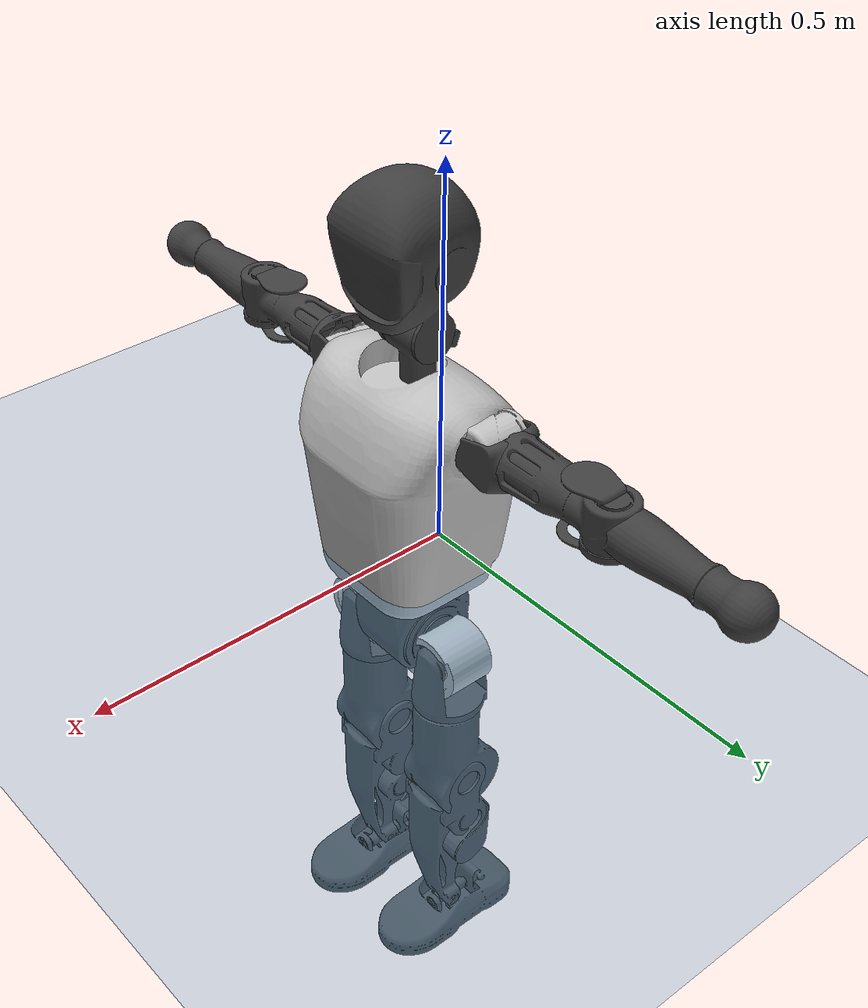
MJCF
<mujoco model="T1">
  <compiler angle="radian" assetdir="assets" balanceinertia="true" inertiafromgeom="false"/>

  <option timestep="0.005" density="1.2" viscosity="2e-05"/>

  <size nkey="1"/>

  <visual>
    <quality shadowsize="8192"/>
    <map shadowclip="0.5"/>
  </visual>

  <default>
    <default class="/">
      <joint armature="0.01" damping="0.01" frictionloss="0.1"/>
      <geom contype="0" conaffinity="0" group="1" solref="-1000 -80"/>
      <site size="0.01 0.005 0.005" group="5"/>
      <general forcelimited="true" biastype="affine" gainprm="25" biasprm="0 -25 -0.6"/>
      <default class="t1">
        <geom rgba="0.25 0.25 0.25 1"/>
        <default class="visual">
          <geom type="mesh" group="2"/>
        </default>
        <default class="collision">
          <geom group="3"/>
        </default>
        <default class="foot">
          <geom size="0.1115 0.05 0.015" type="box" condim="6" group="4" priority="1" solimp="0.015 1 0.015"/>
        </default>
        <default class="reward_collision_sphere">
          <geom group="5" rgba="1 0 0 1"/>
        </default>
      </default>
    </default>
  </default>

  <asset>
    <texture type="skybox" colorspace="auto" name="//unnamed_texture_0" builtin="gradient" rgb1="0.95 0.95 0.95" rgb2="0.95 0.95 0.95" width="100" height="600"/>
    <texture type="2d" colorspace="auto" name="texplane" builtin="checker" rgb1="0.345 0.575 0.748" rgb2="0.345 0.575 0.748" markrgb="1 1 1" width="512" height="512"/>
    <material name="MatPlane" class="/" texture="texplane" texuniform="true" texrepeat="2 2" specular="0.9"/>
    <mesh name="Trunk" class="/" file="Trunk.stl"/>
    <mesh name="H1" class="/" file="H1.stl"/>
    <mesh name="H2" class="/" file="H2.stl"/>
    <mesh name="AL1" class="/" file="AL1.stl"/>
    <mesh name="AL2" class="/" file="AL2.stl"/>
    <mesh name="AL3" class="/" file="AL3.stl"/>
    <mesh name="left_hand_link" class="/" file="left_hand_link.stl"/>
    <mesh name="AR1" class="/" file="AR1.stl"/>
    <mesh name="AR2" class="/" file="AR2.stl"/>
    <mesh name="AR3" class="/" file="AR3.stl"/>
    <mesh name="right_hand_link" class="/" file="right_hand_link.stl"/>
    <mesh name="Waist" class="/" file="Waist.stl"/>
    <mesh name="Hip_Pitch_Left" class="/" file="Hip_Pitch_Left.stl"/>
    <mesh name="Hip_Roll_Left" class="/" file="Hip_Roll_Left.stl"/>
    <mesh name="Hip_Yaw_Left" class="/" file="Hip_Yaw_Left.stl"/>
    <mesh name="Shank_Left" class="/" file="Shank_Left.stl"/>
    <mesh name="Ankle_Cross_Left" class="/" file="Ankle_Cross_Left.stl"/>
    <mesh name="left_foot_link" class="/" file="left_foot_link.stl"/>
    <mesh name="Hip_Pitch_Right" class="/" file="Hip_Pitch_Right.stl"/>
    <mesh name="Hip_Roll_Right" class="/" file="Hip_Roll_Right.stl"/>
    <mesh name="Hip_Yaw_Right" class="/" file="Hip_Yaw_Right.stl"/>
    <mesh name="Shank_Right" class="/" file="Shank_Right.stl"/>
    <mesh name="Ankle_Cross_Right" class="/" file="Ankle_Cross_Right.stl"/>
    <mesh name="right_foot_link" class="/" file="right_foot_link.stl"/>
  </asset>

  <worldbody>
    <geom name="floor" class="/" size="100 100 0.125" type="plane" group="0" material="MatPlane"/>
    <light name="toplight_shadow" class="/" pos="0 0 5" dir="0.0990148 0.0990148 -0.990148" type="directional" ambient="0.04 0.04 0.04" diffuse="0.55 0.55 0.55" specular="0.12 0.12 0.12"/>
    <light name="toplight_fill" class="/" pos="0 0 5" dir="0.0990148 0.0990148 -0.990148" type="directional" castshadow="false" ambient="0.04 0.04 0.04" diffuse="0.3 0.3 0.3" specular="0.08 0.08 0.08"/>
    <body name="trunk" childclass="t1" pos="-4.47797e-05 -0.00192967 0.000697597" quat="0.999999 -0.000906672 -0.000190869 0.000569245">
      <inertial pos="0.0359093 0.000207241 0.103105" quat="0.999954 -0.0016895 -0.00929772 0.0013534" mass="5.95545" diaginertia="0.0107549 0.0163775 0.0585721"/>
      <joint name="//unnamed_joint_0" type="free" armature="0" damping="0" frictionloss="0"/>
      <geom name="//unnamed_geom_1" class="visual" rgba="0.76 0.76 0.76 1" mesh="Trunk"/>
      <geom name="//unnamed_geom_2" class="collision" size="0.0598302 0.0797736 0.11966" pos="0.0393033 0 0.12015" type="box"/>
      <geom name="//unnamed_geom_3" class="reward_collision_sphere" size="0.0917397" pos="0.0393033 0 0.100125"/>
      <geom name="//unnamed_geom_4" class="reward_collision_sphere" size="0.011966" pos="0.0393033 0.0626369 0"/>
      <geom name="//unnamed_geom_5" class="reward_collision_sphere" size="0.011966" pos="0.0393033 -0.0626369 0"/>
      <geom name="//unnamed_geom_6" class="reward_collision_sphere" size="0.011966" pos="0.0393033 0.0788488 0.180225"/>
      <geom name="//unnamed_geom_7" class="reward_collision_sphere" size="0.011966" pos="0.0393033 -0.0788488 0.180225"/>
      <site name="imu" pos="0.00290397 0.0124426 -0.00280538" size="0.00797736"/>
      <camera name="track" pos="0 -1.47381 0" quat="0.707107 0.707107 0 0" mode="trackcom"/>
      <camera name="ego_camera" pos="0.0799168 0 0.420524" quat="-0.5 -0.5 0.5 0.5"/>
      <body name="H1" pos="0.0372062 0.00170122 0.246684" quat="0.999999 7.4219e-05 0.000321456 -0.00109222">
        <inertial pos="-0.00262984 -0.00407862 0.0595968" quat="0.764477 -0.00479455 0.00681545 0.644597" mass="0.237123" diaginertia="3.07728e-05 5.25486e-05 0.000156569"/>
        <joint name="AAHead_yaw" pos="0 0 0" axis="-0.0104686 0.00159673 0.999944" range="-1.61976 1.53322" armature="0.00752938" damping="0.0122455" frictionloss="0.0820332"/>
        <geom name="//unnamed_geom_8" class="visual" mesh="H1"/>
        <body name="H2" pos="-0.000170912 -0.00241069 0.0619409" quat="0.999999 -0.000827248 0.000132912 -0.000796773">
          <inertial pos="0.00297124 -0.000972348 0.0973881" quat="0.987276 0.107655 -0.0770756 -0.0880687" mass="0.315457" diaginertia="0.000239704 0.000428114 0.00172117"/>
          <joint name="Head_pitch" pos="0 0 0" axis="-0.00507705 -0.999932 -0.0105273" range="-1.21152 0.34399" armature="0.00890305" damping="0.00230325" frictionloss="0.0640466"/>
          <geom name="//unnamed_geom_9" class="visual" mesh="H2"/>
          <geom name="//unnamed_geom_10" class="collision" size="0.0638189" pos="0.00655055 0 0.110137"/>
          <geom name="//unnamed_geom_11" class="reward_collision_sphere" size="0.0717963" pos="0.0131011 0 0.100125"/>
        </body>
      </body>
      <body name="AL1" pos="0.0367897 0.0839494 0.222075" quat="1 -0.000115018 0.000478499 -3.65865e-05">
        <inertial pos="0.00174487 0.0341089 -0.00352352" quat="0.499523 0.498009 -0.505011 0.497421" mass="0.264891" diaginertia="0.000158835 0.000272605 0.000286784"/>
        <joint name="Left_Shoulder_Pitch" pos="0 0 0" axis="0.011646 0.999922 -0.00456069" stiffness="0.00908374" range="-3.32897 1.18396" armature="0.00706529" damping="0.00542879" frictionloss="0.0762311"/>
        <geom name="//unnamed_geom_12" class="visual" rgba="0.76 0.76 0.76 1" mesh="AL1"/>
        <body name="AL2" pos="0.00444613 0.0389563 -0.00053412" quat="1 0.000176846 8.35253e-05 -0.000202622">
          <inertial pos="0.0042878 0.0261952 0.000854168" quat="0.487613 0.512327 -0.487969 0.511508" mass="0.0855088" diaginertia="4.91322e-05 7.54496e-05 0.000183759"/>
          <joint name="Left_Shoulder_Roll" pos="0 0 0" axis="-0.999938 0.00814898 -0.00763682" range="-1.56422 1.77681" armature="0.00835808" damping="0.0113579" frictionloss="0.0832704"/>
          <geom name="//unnamed_geom_13" class="visual" mesh="AL2"/>
          <body name="AL3" pos="-0.000163217 0.0434829 0.00233351" quat="1 7.74862e-06 -3.10798e-06 -1.50954e-07">
            <inertial pos="-0.00177792 0.0628542 0.000445461" quat="0.712456 0.701644 -0.00173186 0.00994444" mass="0.498068" diaginertia="0.00154777 0.00270523 0.000637235"/>
            <joint name="Left_Elbow_Pitch" pos="0 0 0" axis="0.000602607 -0.999999 0.00129447" range="-2.32597 2.22603" armature="0.00769953" damping="0" frictionloss="0.0680009"/>
            <geom name="//unnamed_geom_14" class="visual" mesh="AL3"/>
            <geom name="//unnamed_geom_15" class="collision" size="0.0239321 0.0598302" pos="0 0.0368452 0" quat="0.707105 0.707108 0 0" type="cylinder"/>
            <geom name="//unnamed_geom_16" class="reward_collision_sphere" size="0.0287185"/>
            <body name="left_hand_link" pos="-0.0012463 0.109461 0.00105012" quat="0.999999 -0.000492992 -0.000249898 -0.000876184">
              <inertial pos="-0.00154625 0.0801758 0.00154734" quat="0.705394 0.708703 -0.0108444 0.00642931" mass="0.166743" diaginertia="0.000996427 0.00171051 0.000214696"/>
              <joint name="Left_Elbow_Yaw" pos="0 0 0" axis="-0.00087832 0.00200067 0.999998" range="-2.46928 -0.0509843" armature="0.00847493" damping="0.0192256" frictionloss="0.0804787"/>
              <geom name="//unnamed_geom_17" class="visual" mesh="left_hand_link"/>
              <geom name="//unnamed_geom_18" class="collision" size="0.0239321 0.0698019" pos="0 0.0957976 0" quat="0.707105 0.707108 0 0" type="cylinder"/>
              <geom name="//unnamed_geom_19" class="reward_collision_sphere" size="0.0398868"/>
              <geom name="//unnamed_geom_20" class="reward_collision_sphere" size="0.0279208" pos="0 0.0810595 0"/>
              <geom name="//unnamed_geom_21" class="reward_collision_sphere" size="0.0279208" pos="0 0.158434 0"/>
            </body>
          </body>
        </body>
      </body>
      <body name="AR1" pos="0.0360213 -0.0727322 0.218211" quat="0.999998 0.000502651 -0.000670839 0.00153317">
        <inertial pos="-0.00135158 -0.0358654 0.00232695" quat="0.504979 0.492838 -0.504121 0.497965" mass="0.26134" diaginertia="0.000159623 0.000269974 0.000283734"/>
        <joint name="Right_Shoulder_Pitch" pos="0 0 0" axis="0.015744 -0.99987 0.0034549" range="-1.2021 3.29341" armature="0.00691913" damping="0.00852654" frictionloss="0.0707734"/>
        <geom name="//unnamed_geom_22" class="visual" rgba="0.76 0.76 0.76 1" mesh="AR1"/>
        <body name="AR2" pos="1.24125e-05 -0.0322929 0.00231735" quat="1 -0.000132255 -0.000198672 -0.000140704">
          <inertial pos="-0.000118056 -0.0257385 -0.00110742" quat="0.51291 0.486949 -0.513173 0.486269" mass="0.0802061" diaginertia="4.80056e-05 7.61602e-05 0.000178332"/>
          <joint name="Right_Shoulder_Roll" pos="0 0 0" axis="-0.999967 -0.0077629 0.00221105" range="-1.78011 1.53129" armature="0.00803469" damping="0.00864073" frictionloss="0.0733172"/>
          <geom name="//unnamed_geom_23" class="visual" mesh="AR2"/>
          <body name="AR3" pos="-0.00173481 -0.045751 0.000305461" quat="1 -0.000641328 0.000114278 -0.000113556">
            <inertial pos="-0.00404324 -0.0627438 0.00288408" quat="0.704728 0.709401 0.00272397 0.0100129" mass="0.51205" diaginertia="0.00151698 0.00257092 0.000584873"/>
            <joint name="Right_Elbow_Pitch" pos="0 0 0" axis="0.00721905 0.999967 0.00368738" range="-2.31863 2.35536" armature="0.00760621" damping="0.0109732" frictionloss="0.0877066"/>
            <geom name="//unnamed_geom_24" class="visual" mesh="AR3"/>
            <geom name="//unnamed_geom_25" class="collision" size="0.0239321 0.0598302" pos="0 -0.0368452 0" quat="0.707105 0.707108 0 0" type="cylinder"/>
            <geom name="//unnamed_geom_26" class="reward_collision_sphere" size="0.0287185"/>
            <body name="right_hand_link" pos="-0.00272787 -0.1093 -0.00186805" quat="1 -0.00010658 0.000284563 0.000156476">
              <inertial pos="-0.00311982 -0.0780838 0.0022903" quat="0.703748 0.710446 0.000515121 0.00229871" mass="0.179253" diaginertia="0.00108058 0.0018229 0.00021959"/>
              <joint name="Right_Elbow_Yaw" pos="0 0 0" axis="0.00130554 0.00384778 0.999992" range="-0.00984615 2.46612" armature="0.00708442" damping="0.0170016" frictionloss="0.0785764"/>
              <geom name="//unnamed_geom_27" class="visual" mesh="right_hand_link"/>
              <geom name="//unnamed_geom_28" class="collision" size="0.0239321 0.0698019" pos="0 -0.0957976 0" quat="0.707105 0.707108 0 0" type="cylinder"/>
              <geom name="//unnamed_geom_29" class="reward_collision_sphere" size="0.0398868"/>
              <geom name="//unnamed_geom_30" class="reward_collision_sphere" size="0.0279208" pos="0 -0.0810595 0"/>
              <geom name="//unnamed_geom_31" class="reward_collision_sphere" size="0.0279208" pos="0 -0.158434 0"/>
            </body>
          </body>
        </body>
      </body>
      <body name="Waist" pos="0.0433545 0.00155151 -0.113488" quat="1 -0.00034484 0.000658456 -0.000220083">
        <inertial pos="0.00540455 -0.000557793 0.00575228" quat="0.983687 3.36041e-05 -0.179883 0.00142173" mass="1.30293" diaginertia="0.000616707 0.00111132 0.00470489"/>
        <joint name="Waist" pos="0 0 0" axis="-0.00588602 -0.0119078 0.999912" range="-1.61272 1.52323" armature="0.00828568" damping="0.0202394" frictionloss="0.0855071"/>
        <geom name="//unnamed_geom_32" class="visual" mesh="Waist"/>
        <body name="Hip_Pitch_Left" pos="0.00173385 0.0748746 -0.000374218" quat="1 0.000118665 -0.000163386 -2.85599e-05">
          <inertial pos="-0.00136544 -0.00483356 -0.0165374" quat="0.977067 0.212479 0.0118016 -0.00730422" mass="0.510774" diaginertia="0.000212551 0.000308373 0.00122389"/>
          <joint name="Left_Hip_Pitch" pos="0 0 0" axis="0.0120134 0.999925 0.0025457" stiffness="0.00688496" range="-1.76011 1.54615" armature="0.00691693" damping="0.0073737" frictionloss="0.0773097"/>
          <geom name="//unnamed_geom_33" class="visual" rgba="0.76 0.76 0.76 1" mesh="Hip_Pitch_Left"/>
          <body name="Hip_Roll_Left" pos="-0.00218122 -0.00276063 -0.0206867" quat="1 -0.000718163 0.000615811 -0.000291161">
            <inertial pos="-0.00138103 0.000409475 -0.0529216" quat="0.710241 -0.0110272 -0.00181038 0.70387" mass="0.194528" diaginertia="0.000205131 0.000330038 0.000525039"/>
            <joint name="Left_Hip_Roll" pos="0 0 0" axis="-0.999917 0.0128677 -0.00109479" stiffness="0.00876479" range="-1.61561 0.157055" armature="0.00879763" damping="0.0193732" frictionloss="0.0853939"/>
            <geom name="//unnamed_geom_34" class="visual" mesh="Hip_Roll_Left"/>
            <geom name="//unnamed_geom_35" class="reward_collision_sphere" size="0.0438755"/>
            <body name="Hip_Yaw_Left" pos="-0.000434736 -0.00270526 -0.0870244" quat="1 0.000390761 0.000122353 -0.000266518">
              <inertial pos="-0.00629001 -9.85806e-05 -0.086771" quat="0.695815 -0.0390946 -0.033452 0.716376" mass="1.13109" diaginertia="0.00328374 0.00583068 0.00273756"/>
              <joint name="Left_Hip_Yaw" pos="0 0 0" axis="-0.000335269 0.00387019 -0.999992" range="-1.06093 0.925542" armature="0.00862335" damping="0.0297085" frictionloss="0.0767402"/>
              <geom name="//unnamed_geom_36" class="visual" mesh="Hip_Yaw_Left"/>
              <geom name="//unnamed_geom_37" class="collision" size="0.0398868 0.0638189" type="cylinder"/>
              <body name="Shank_Left" pos="-0.0088089 -0.00319131 -0.132226" quat="1 0.000668966 -0.000354774 -0.000286597">
                <inertial pos="-0.00543347 0.00128379 -0.123642" quat="0.997385 0.00124592 -0.0355368 0.0629249" mass="0.849574" diaginertia="0.00408109 0.00720427 0.00182292"/>
                <joint name="Left_Knee_Pitch" pos="0 0 0" axis="0.00207737 0.999948 -0.00995036" range="0.0307247 2.34023" armature="0.00800861" damping="0" frictionloss="0.0692427"/>
                <geom name="//unnamed_geom_38" class="visual" mesh="Shank_Left"/>
                <geom name="//unnamed_geom_39" class="collision" size="0.0398868 0.0598302" pos="0 0 -0.12015" type="cylinder"/>
                <geom name="//unnamed_geom_40" class="reward_collision_sphere" size="0.0518528"/>
                <body name="Ankle_Cross_Left" pos="-0.0042283 -0.00354498 -0.279991" quat="0.999999 0.000586376 0.000571529 -0.00116422">
                  <inertial pos="-0.000201077 -0.00212403 -0.00812817" quat="0.444088 0.553469 0.549959 0.440457" mass="0.0366652" diaginertia="3.54295e-06 5.7098e-06 1.12333e-05"/>
                  <joint name="Left_Ankle_Pitch" pos="0 0 0" axis="0.0012275 0.999996 -0.00270357" stiffness="0.00839871" range="-0.890877 0.39888" armature="0.00862173" damping="0.0200096" frictionloss="0.0856865"/>
                  <geom name="//unnamed_geom_41" class="visual" mesh="Ankle_Cross_Left"/>
                  <body name="left_foot_link" pos="-0.00328917 0.00130974 -0.0142492" quat="0.999999 -0.000943669 0.00110685 -0.000516233">
                    <inertial pos="0.00192595 -0.000668328 -0.0115174" quat="0.00144146 0.615413 -0.00481443 0.788189" mass="0.340425" diaginertia="0.00032929 0.000530891 0.0021724"/>
                    <joint name="Left_Ankle_Roll" pos="0 0 0" axis="-0.999993 0.00343913 0.0013048" stiffness="0.00344993" range="-0.407524 0.485913" armature="0.00871892" damping="0.000349845" frictionloss="0.0878011"/>
                    <geom name="//unnamed_geom_42" class="visual" mesh="left_foot_link"/>
                    <geom name="left_foot" class="foot" size="0.0993114 0.037861 0.0111823" pos="0.00655055 0 -0.0150187"/>
                    <geom name="//unnamed_geom_44" class="reward_collision_sphere" size="0.0414823" pos="0.00655055 0 -0.0150187"/>
                    <geom name="//unnamed_geom_45" class="reward_collision_sphere" size="0.0239321" pos="0.0622303 -0.0169488 -0.0150187"/>
                    <geom name="//unnamed_geom_46" class="reward_collision_sphere" size="0.0239321" pos="-0.0458539 -0.0169488 -0.0150187"/>
                    <site name="left_foot" class="foot" pos="0.00655055 0 -0.0150187" size="0.00797736"/>
                  </body>
                </body>
              </body>
            </body>
          </body>
        </body>
        <body name="Hip_Pitch_Right" pos="0.00517565 -0.078431 5.64999e-05" quat="1 -0.000346564 0.000573349 0.000347423">
          <inertial pos="0.00238137 0.00545515 -0.016655" quat="0.971793 -0.235278 0.0158752 -0.00337116" mass="0.521711" diaginertia="0.000210932 0.00032744 0.00121579"/>
          <joint name="Right_Hip_Pitch" pos="0 0 0" axis="-0.00482474 -0.999988 -0.000459431" range="-1.61983 1.81671" armature="0.00829159" damping="0.0118712" frictionloss="0.0704214"/>
          <geom name="//unnamed_geom_47" class="visual" rgba="0.76 0.76 0.76 1" mesh="Hip_Pitch_Right"/>
          <body name="Hip_Roll_Right" pos="-0.00242667 0.00130158 -0.0192148" quat="1 -1.65986e-05 5.14299e-05 -2.79547e-05">
            <inertial pos="0.00300661 0.00218955 -0.0532378" quat="0.706734 -0.00640437 -0.00535985 0.70743" mass="0.193566" diaginertia="0.00021534 0.000335315 0.00053318"/>
            <joint name="Right_Hip_Roll" pos="0 0 0" axis="-0.999889 0.0042235 -0.0142539" range="-0.198877 1.63474" armature="0.00886272" damping="0.0182763" frictionloss="0.0904031"/>
            <geom name="//unnamed_geom_48" class="visual" mesh="Hip_Roll_Right"/>
            <geom name="//unnamed_geom_49" class="reward_collision_sphere" size="0.0438755"/>
            <body name="Hip_Yaw_Right" pos="-0.00189601 -0.0023329 -0.0820449" quat="1 1.46803e-05 7.59118e-06 -1.79099e-05">
              <inertial pos="-0.00651063 -0.00108601 -0.0885882" quat="0.722542 -0.0341103 -0.0184451 0.690238" mass="1.1341" diaginertia="0.00322689 0.0056 0.00270542"/>
              <joint name="Right_Hip_Yaw" pos="0 0 0" axis="0.00214286 0.0187782 -0.999821" range="-0.983461 1.01825" armature="0.00803287" damping="0" frictionloss="0.0835649"/>
              <geom name="//unnamed_geom_50" class="visual" mesh="Hip_Yaw_Right"/>
              <geom name="//unnamed_geom_51" class="collision" size="0.0398868 0.0638189" type="cylinder"/>
              <body name="Shank_Right" pos="-0.0112327 -0.00180261 -0.135605" quat="1 -0.000531128 0.000265927 0.000211844">
                <inertial pos="-0.00251118 0.000809727 -0.120992" quat="0.999487 0.0039421 -0.0252433 -0.0192934" mass="0.855997" diaginertia="0.00409377 0.00744484 0.00194615"/>
                <joint name="Right_Knee_Pitch" pos="0 0 0" axis="0.00219921 -0.999959 -0.00878665" stiffness="0.014412" range="-2.32274 0.012623" armature="0.00805167" damping="0" frictionloss="0.0781542"/>
                <geom name="//unnamed_geom_52" class="visual" mesh="Shank_Right"/>
                <geom name="//unnamed_geom_53" class="collision" size="0.0398868 0.0598302" pos="0 0 -0.12015" type="cylinder"/>
                <geom name="//unnamed_geom_54" class="reward_collision_sphere" size="0.0518528"/>
                <body name="Ankle_Cross_Right" pos="0.00479119 -0.00132933 -0.277656" quat="1 -0.000273247 6.8403e-05 -0.0005397">
                  <inertial pos="-0.00371756 -0.00019147 -0.00737234" quat="0.443107 0.551219 0.55029 0.443841" mass="0.0365865" diaginertia="3.66092e-06 5.54409e-06 1.13579e-05"/>
                  <joint name="Right_Ankle_Pitch" pos="0 0 0" axis="0.000651098 -0.999997 0.00223128" stiffness="0.00884514" range="-0.269281 0.880631" armature="0.00824818" damping="0.0075678" frictionloss="0.0720435"/>
                  <geom name="//unnamed_geom_55" class="visual" mesh="Ankle_Cross_Right"/>
                  <body name="right_foot_link" pos="0.000640618 -0.00404597 -0.0109233" quat="1 -9.92323e-05 -4.92351e-06 0.000262007">
                    <inertial pos="-0.00013229 -0.000319452 -0.00922227" quat="0.00577923 0.626572 0.00305328 0.779336" mass="0.326937" diaginertia="0.000312203 0.000513406 0.00225285"/>
                    <joint name="Right_Ankle_Roll" pos="0 0 0" axis="-0.999929 -0.00871969 -0.00810811" range="-0.482612 0.408449" armature="0.00827656" damping="0.0120062" frictionloss="0.091803"/>
                    <geom name="//unnamed_geom_56" class="visual" mesh="right_foot_link"/>
                    <geom name="right_foot" class="foot" size="0.0944128 0.045982 0.0114242" pos="0.00655055 0 -0.0150187"/>
                    <geom name="//unnamed_geom_58" class="reward_collision_sphere" size="0.0319094"/>
                    <geom name="//unnamed_geom_59" class="reward_collision_sphere" size="0.0239321" pos="0.00655055 0 -0.0150187"/>
                    <geom name="//unnamed_geom_60" class="reward_collision_sphere" size="0.0239321" pos="0.0622303 0.0169488 -0.0150187"/>
                    <geom name="//unnamed_geom_61" class="reward_collision_sphere" size="0.0239321" pos="-0.0458539 0.0169488 -0.0150187"/>
                    <site name="right_foot" class="foot" pos="0.00655055 0 -0.0150187" size="0.00797736"/>
                  </body>
                </body>
              </body>
            </body>
          </body>
        </body>
      </body>
    </body>
  </worldbody>

  <contact>
    <pair class="/" geom1="floor" geom2="left_foot" name="//unnamed_contact_0"/>
    <pair class="/" geom1="floor" geom2="right_foot" name="//unnamed_contact_1"/>
  </contact>

  <actuator>
    <general name="AAHead_yaw" class="/" joint="AAHead_yaw" forcerange="-5.04408 5.04408" gainprm="21.5427" biasprm="0 -21.5427 -0.495539"/>
    <general name="Head_pitch" class="/" joint="Head_pitch" forcerange="-6.14155 6.14155" gainprm="21.5427" biasprm="0 -21.5427 -0.495539"/>
    <general name="Left_Shoulder_Pitch" class="/" joint="Left_Shoulder_Pitch" forcerange="-16.5414 16.5414" gainprm="21.5427" biasprm="0 -21.5427 -0.495539"/>
    <general name="Left_Shoulder_Roll" class="/" joint="Left_Shoulder_Roll" forcerange="-14.8665 14.8665" gainprm="21.5427" biasprm="0 -21.5427 -0.495539"/>
    <general name="Left_Elbow_Pitch" class="/" joint="Left_Elbow_Pitch" forcerange="-13.3392 13.3392" gainprm="21.5427" biasprm="0 -21.5427 -0.495539"/>
    <general name="Left_Elbow_Yaw" class="/" joint="Left_Elbow_Yaw" forcerange="-14.7662 14.7662" gainprm="21.5427" biasprm="0 -21.5427 -0.495539"/>
    <general name="Right_Shoulder_Pitch" class="/" joint="Right_Shoulder_Pitch" forcerange="-13.2723 13.2723" gainprm="21.5427" biasprm="0 -21.5427 -0.495539"/>
    <general name="Right_Shoulder_Roll" class="/" joint="Right_Shoulder_Roll" forcerange="-14.1574 14.1574" gainprm="21.5427" biasprm="0 -21.5427 -0.495539"/>
    <general name="Right_Elbow_Pitch" class="/" joint="Right_Elbow_Pitch" forcerange="-13.5246 13.5246" gainprm="21.5427" biasprm="0 -21.5427 -0.495539"/>
    <general name="Right_Elbow_Yaw" class="/" joint="Right_Elbow_Yaw" forcerange="-13.47 13.47" gainprm="21.5427" biasprm="0 -21.5427 -0.495539"/>
    <general name="Waist" class="/" joint="Waist" forcerange="-22.5224 22.5224" gainprm="21.5427" biasprm="0 -21.5427 -0.495539"/>
    <general name="Left_Hip_Pitch" class="/" joint="Left_Hip_Pitch" forcerange="-34.9448 34.9448" gainprm="21.5427" biasprm="0 -21.5427 -0.495539"/>
    <general name="Left_Hip_Roll" class="/" joint="Left_Hip_Roll" forcerange="-22.2696 22.2696" gainprm="21.5427" biasprm="0 -21.5427 -0.495539"/>
    <general name="Left_Hip_Yaw" class="/" joint="Left_Hip_Yaw" forcerange="-22.3303 22.3303" gainprm="21.5427" biasprm="0 -21.5427 -0.495539"/>
    <general name="Left_Knee_Pitch" class="/" joint="Left_Knee_Pitch" forcerange="-51.7959 51.7959" gainprm="21.5427" biasprm="0 -21.5427 -0.495539"/>
    <general name="Left_Ankle_Pitch" class="/" joint="Left_Ankle_Pitch" forcerange="-14.357 14.357" gainprm="21.5427" biasprm="0 -21.5427 -0.495539"/>
    <general name="Left_Ankle_Roll" class="/" joint="Left_Ankle_Roll" forcerange="-12.6779 12.6779" gainprm="21.5427" biasprm="0 -21.5427 -0.495539"/>
    <general name="Right_Hip_Pitch" class="/" joint="Right_Hip_Pitch" forcerange="-35.7692 35.7692" gainprm="21.5427" biasprm="0 -21.5427 -0.495539"/>
    <general name="Right_Hip_Roll" class="/" joint="Right_Hip_Roll" forcerange="-22.4418 22.4418" gainprm="21.5427" biasprm="0 -21.5427 -0.495539"/>
    <general name="Right_Hip_Yaw" class="/" joint="Right_Hip_Yaw" forcerange="-23.9197 23.9197" gainprm="21.5427" biasprm="0 -21.5427 -0.495539"/>
    <general name="Right_Knee_Pitch" class="/" joint="Right_Knee_Pitch" forcerange="-46.3843 46.3843" gainprm="21.5427" biasprm="0 -21.5427 -0.495539"/>
    <general name="Right_Ankle_Pitch" class="/" joint="Right_Ankle_Pitch" forcerange="-15.9869 15.9869" gainprm="21.5427" biasprm="0 -21.5427 -0.495539"/>
    <general name="Right_Ankle_Roll" class="/" joint="Right_Ankle_Roll" forcerange="-11.6108 11.6108" gainprm="21.5427" biasprm="0 -21.5427 -0.495539"/>
  </actuator>

  <sensor>
    <gyro site="imu" name="imu_angular_velocity"/>
    <velocimeter site="imu" name="imu_linear_velocity"/>
    <framelinvel objtype="site" objname="left_foot" name="left_foot_global_linear_velocity"/>
    <framelinvel objtype="site" objname="right_foot" name="right_foot_global_linear_velocity"/>
  </sensor>

  <keyframe>
    <key name="home" qpos="0 0 0.6385 1 0 0 0 0 0 0 1.4 0 -0.4 0 -1.4 0 0.4 0 -0.4 0 0 0.8 -0.4 0 0.4 0 0 -0.8 0.4 0"/>
  </keyframe>
</mujoco>
